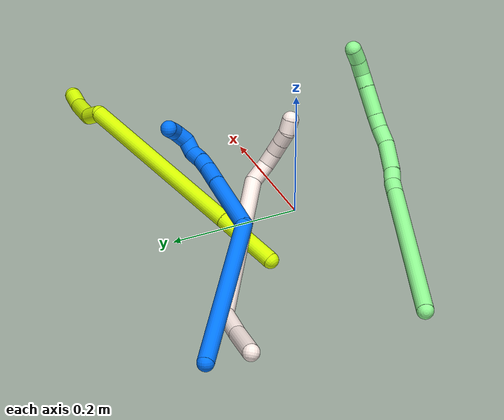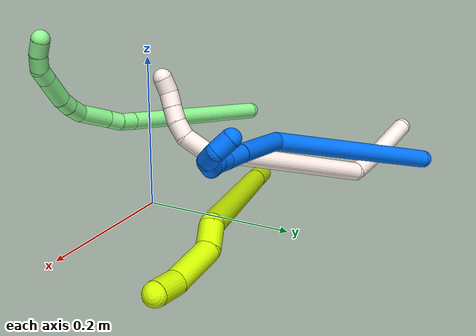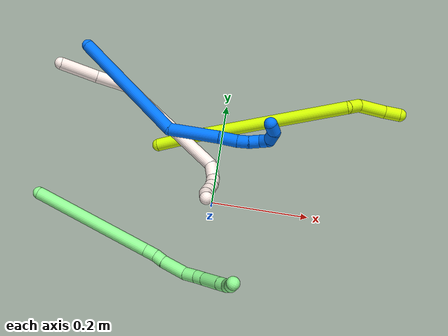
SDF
<sdf version="1.7">
 <world name="default">
  <model name="11">
   <static>0</static>
   <link name="11">
    <collision name="collision-cylinder-e_1_1_4">
     <pose>0.034737 0.008657 0.012418 -0.608771 1.15984 -0.405901</pose>
     <geometry><cylinder><radius>0.0125</radius><length>0.075785</length></cylinder></geometry>
     <surface>
      <friction><ode><mu>1.16</mu><mu2>1.16</mu2><slip1>0</slip1><slip2>0</slip2></ode></friction>
      <contact><ode><kp>1e+06</kp><kd>1</kd><max_vel>0</max_vel><min_depth>0.001</min_depth></ode></contact>
     </surface>
    </collision>
    <visual name="visual-cylinder-e_1_1_4">
     <pose>0.034737 0.008657 0.012418 -0.608771 1.15984 -0.405901</pose>
     <geometry><cylinder><radius>0.0125</radius><length>0.075785</length></cylinder></geometry>
     <material><ambient>1 0.933333 0.909804 1</ambient></material>
    </visual>
    <collision name="collision-cylinder-e_2_4_5">
     <pose>0.096171 0.026401 0.038602 -0.583536 1.01734 -0.331867</pose>
     <geometry><cylinder><radius>0.0125</radius><length>0.062763</length></cylinder></geometry>
     <surface>
      <friction><ode><mu>1.16</mu><mu2>1.16</mu2><slip1>0</slip1><slip2>0</slip2></ode></friction>
      <contact><ode><kp>1e+06</kp><kd>1</kd><max_vel>0</max_vel><min_depth>0.001</min_depth></ode></contact>
     </surface>
    </collision>
    <visual name="visual-cylinder-e_2_4_5">
     <pose>0.096171 0.026401 0.038602 -0.583536 1.01734 -0.331867</pose>
     <geometry><cylinder><radius>0.0125</radius><length>0.062763</length></cylinder></geometry>
     <material><ambient>1 0.933333 0.909804 1</ambient></material>
    </visual>
    <collision name="collision-cylinder-e_3_5_6">
     <pose>0.188826 0.027038 0.156612 0.080904 0.562655 0.023392</pose>
     <geometry><cylinder><radius>0.0125</radius><length>0.247297</length></cylinder></geometry>
     <surface>
      <friction><ode><mu>1.16</mu><mu2>1.16</mu2><slip1>0</slip1><slip2>0</slip2></ode></friction>
      <contact><ode><kp>1e+06</kp><kd>1</kd><max_vel>0</max_vel><min_depth>0.001</min_depth></ode></contact>
     </surface>
    </collision>
    <visual name="visual-cylinder-e_3_5_6">
     <pose>0.188826 0.027038 0.156612 0.080904 0.562655 0.023392</pose>
     <geometry><cylinder><radius>0.0125</radius><length>0.247297</length></cylinder></geometry>
     <material><ambient>1 0.933333 0.909804 1</ambient></material>
    </visual>
    <collision name="collision-cylinder-e_4_6_7">
     <pose>0.255263 0.010892 0.275001 0.498168 0.02973 0.007563</pose>
     <geometry><cylinder><radius>0.0125</radius><length>0.032218</length></cylinder></geometry>
     <surface>
      <friction><ode><mu>1.16</mu><mu2>1.16</mu2><slip1>0</slip1><slip2>0</slip2></ode></friction>
      <contact><ode><kp>1e+06</kp><kd>1</kd><max_vel>0</max_vel><min_depth>0.001</min_depth></ode></contact>
     </surface>
    </collision>
    <visual name="visual-cylinder-e_4_6_7">
     <pose>0.255263 0.010892 0.275001 0.498168 0.02973 0.007563</pose>
     <geometry><cylinder><radius>0.0125</radius><length>0.032218</length></cylinder></geometry>
     <material><ambient>1 0.933333 0.909804 1</ambient></material>
    </visual>
    <collision name="collision-cylinder-e_5_7_8">
     <pose>0.251388 -0.000866 0.298276 0.4188 -0.410847 -0.088503</pose>
     <geometry><cylinder><radius>0.0125</radius><length>0.021802</length></cylinder></geometry>
     <surface>
      <friction><ode><mu>1.16</mu><mu2>1.16</mu2><slip1>0</slip1><slip2>0</slip2></ode></friction>
      <contact><ode><kp>1e+06</kp><kd>1</kd><max_vel>0</max_vel><min_depth>0.001</min_depth></ode></contact>
     </surface>
    </collision>
    <visual name="visual-cylinder-e_5_7_8">
     <pose>0.251388 -0.000866 0.298276 0.4188 -0.410847 -0.088503</pose>
     <geometry><cylinder><radius>0.0125</radius><length>0.021802</length></cylinder></geometry>
     <material><ambient>1 0.933333 0.909804 1</ambient></material>
    </visual>
    <collision name="collision-cylinder-e_6_8_9">
     <pose>0.24102 -0.008078 0.31476 0.404399 -0.64466 -0.136718</pose>
     <geometry><cylinder><radius>0.0125</radius><length>0.020015</length></cylinder></geometry>
     <surface>
      <friction><ode><mu>1.16</mu><mu2>1.16</mu2><slip1>0</slip1><slip2>0</slip2></ode></friction>
      <contact><ode><kp>1e+06</kp><kd>1</kd><max_vel>0</max_vel><min_depth>0.001</min_depth></ode></contact>
     </surface>
    </collision>
    <visual name="visual-cylinder-e_6_8_9">
     <pose>0.24102 -0.008078 0.31476 0.404399 -0.64466 -0.136718</pose>
     <geometry><cylinder><radius>0.0125</radius><length>0.020015</length></cylinder></geometry>
     <material><ambient>1 0.933333 0.909804 1</ambient></material>
    </visual>
    <collision name="collision-cylinder-e_7_9_10">
     <pose>0.22857 -0.014186 0.329178 0.396909 -0.69884 -0.14629</pose>
     <geometry><cylinder><radius>0.0125</radius><length>0.020009</length></cylinder></geometry>
     <surface>
      <friction><ode><mu>1.16</mu><mu2>1.16</mu2><slip1>0</slip1><slip2>0</slip2></ode></friction>
      <contact><ode><kp>1e+06</kp><kd>1</kd><max_vel>0</max_vel><min_depth>0.001</min_depth></ode></contact>
     </surface>
    </collision>
    <visual name="visual-cylinder-e_7_9_10">
     <pose>0.22857 -0.014186 0.329178 0.396909 -0.69884 -0.14629</pose>
     <geometry><cylinder><radius>0.0125</radius><length>0.020009</length></cylinder></geometry>
     <material><ambient>1 0.933333 0.909804 1</ambient></material>
    </visual>
    <collision name="collision-cylinder-e_8_10_2">
     <pose>0.218033 -0.018128 0.345371 0.10706 -0.420077 -0.022844</pose>
     <geometry><cylinder><radius>0.0125</radius><length>0.020112</length></cylinder></geometry>
     <surface>
      <friction><ode><mu>1.16</mu><mu2>1.16</mu2><slip1>0</slip1><slip2>0</slip2></ode></friction>
      <contact><ode><kp>1e+06</kp><kd>1</kd><max_vel>0</max_vel><min_depth>0.001</min_depth></ode></contact>
     </surface>
    </collision>
    <visual name="visual-cylinder-e_8_10_2">
     <pose>0.218033 -0.018128 0.345371 0.10706 -0.420077 -0.022844</pose>
     <geometry><cylinder><radius>0.0125</radius><length>0.020112</length></cylinder></geometry>
     <material><ambient>1 0.933333 0.909804 1</ambient></material>
    </visual>
    <collision name="collision-sphere-2">
     <pose>0.213932 -0.019109 0.3545 0 -0 0</pose>
     <geometry><sphere><radius>0.0125</radius></sphere></geometry>
     <surface>
      <friction><ode><mu>1.16</mu><mu2>1.16</mu2><slip1>0</slip1><slip2>0</slip2></ode></friction>
      <contact><ode><kp>1e+06</kp><kd>1</kd><max_vel>0</max_vel><min_depth>0.001</min_depth></ode></contact>
     </surface>
    </collision>
    <visual name="visual-sphere-2">
     <pose>0.213932 -0.019109 0.3545 0 -0 0</pose>
     <geometry><sphere><radius>0.0125</radius></sphere></geometry>
     <material><ambient>1 0.933333 0.909804 1</ambient></material>
    </visual>
    <collision name="collision-sphere-10">
     <pose>0.222134 -0.017147 0.336242 0 -0 0</pose>
     <geometry><sphere><radius>0.0125</radius></sphere></geometry>
     <surface>
      <friction><ode><mu>1.16</mu><mu2>1.16</mu2><slip1>0</slip1><slip2>0</slip2></ode></friction>
      <contact><ode><kp>1e+06</kp><kd>1</kd><max_vel>0</max_vel><min_depth>0.001</min_depth></ode></contact>
     </surface>
    </collision>
    <visual name="visual-sphere-10">
     <pose>0.222134 -0.017147 0.336242 0 -0 0</pose>
     <geometry><sphere><radius>0.0125</radius></sphere></geometry>
     <material><ambient>1 0.933333 0.909804 1</ambient></material>
    </visual>
    <collision name="collision-sphere-9">
     <pose>0.235006 -0.011225 0.322114 0 -0 0</pose>
     <geometry><sphere><radius>0.0125</radius></sphere></geometry>
     <surface>
      <friction><ode><mu>1.16</mu><mu2>1.16</mu2><slip1>0</slip1><slip2>0</slip2></ode></friction>
      <contact><ode><kp>1e+06</kp><kd>1</kd><max_vel>0</max_vel><min_depth>0.001</min_depth></ode></contact>
     </surface>
    </collision>
    <visual name="visual-sphere-9">
     <pose>0.235006 -0.011225 0.322114 0 -0 0</pose>
     <geometry><sphere><radius>0.0125</radius></sphere></geometry>
     <material><ambient>1 0.933333 0.909804 1</ambient></material>
    </visual>
    <collision name="collision-sphere-4">
     <pose>0.069475 0.017313 0.024836 0 -0 0</pose>
     <geometry><sphere><radius>0.0125</radius></sphere></geometry>
     <surface>
      <friction><ode><mu>1.16</mu><mu2>1.16</mu2><slip1>0</slip1><slip2>0</slip2></ode></friction>
      <contact><ode><kp>1e+06</kp><kd>1</kd><max_vel>0</max_vel><min_depth>0.001</min_depth></ode></contact>
     </surface>
    </collision>
    <visual name="visual-sphere-4">
     <pose>0.069475 0.017313 0.024836 0 -0 0</pose>
     <geometry><sphere><radius>0.0125</radius></sphere></geometry>
     <material><ambient>1 0.933333 0.909804 1</ambient></material>
    </visual>
    <collision name="collision-sphere-1">
     <geometry><sphere><radius>0.0125</radius></sphere></geometry>
     <surface>
      <friction><ode><mu>1.16</mu><mu2>1.16</mu2><slip1>0</slip1><slip2>0</slip2></ode></friction>
      <contact><ode><kp>1e+06</kp><kd>1</kd><max_vel>0</max_vel><min_depth>0.001</min_depth></ode></contact>
     </surface>
    </collision>
    <visual name="visual-sphere-1">
     <geometry><sphere><radius>0.0125</radius></sphere></geometry>
     <material><ambient>1 0.933333 0.909804 1</ambient></material>
    </visual>
    <collision name="collision-sphere-8">
     <pose>0.247034 -0.00493 0.307406 0 -0 0</pose>
     <geometry><sphere><radius>0.0125</radius></sphere></geometry>
     <surface>
      <friction><ode><mu>1.16</mu><mu2>1.16</mu2><slip1>0</slip1><slip2>0</slip2></ode></friction>
      <contact><ode><kp>1e+06</kp><kd>1</kd><max_vel>0</max_vel><min_depth>0.001</min_depth></ode></contact>
     </surface>
    </collision>
    <visual name="visual-sphere-8">
     <pose>0.247034 -0.00493 0.307406 0 -0 0</pose>
     <geometry><sphere><radius>0.0125</radius></sphere></geometry>
     <material><ambient>1 0.933333 0.909804 1</ambient></material>
    </visual>
    <collision name="collision-sphere-5">
     <pose>0.122868 0.03549 0.052367 0 -0 0</pose>
     <geometry><sphere><radius>0.0125</radius></sphere></geometry>
     <surface>
      <friction><ode><mu>1.16</mu><mu2>1.16</mu2><slip1>0</slip1><slip2>0</slip2></ode></friction>
      <contact><ode><kp>1e+06</kp><kd>1</kd><max_vel>0</max_vel><min_depth>0.001</min_depth></ode></contact>
     </surface>
    </collision>
    <visual name="visual-sphere-5">
     <pose>0.122868 0.03549 0.052367 0 -0 0</pose>
     <geometry><sphere><radius>0.0125</radius></sphere></geometry>
     <material><ambient>1 0.933333 0.909804 1</ambient></material>
    </visual>
    <collision name="collision-sphere-6">
     <pose>0.254784 0.018585 0.260857 0 -0 0</pose>
     <geometry><sphere><radius>0.0125</radius></sphere></geometry>
     <surface>
      <friction><ode><mu>1.16</mu><mu2>1.16</mu2><slip1>0</slip1><slip2>0</slip2></ode></friction>
      <contact><ode><kp>1e+06</kp><kd>1</kd><max_vel>0</max_vel><min_depth>0.001</min_depth></ode></contact>
     </surface>
    </collision>
    <visual name="visual-sphere-6">
     <pose>0.254784 0.018585 0.260857 0 -0 0</pose>
     <geometry><sphere><radius>0.0125</radius></sphere></geometry>
     <material><ambient>1 0.933333 0.909804 1</ambient></material>
    </visual>
    <collision name="collision-sphere-7">
     <pose>0.255742 0.003198 0.289146 0 -0 0</pose>
     <geometry><sphere><radius>0.0125</radius></sphere></geometry>
     <surface>
      <friction><ode><mu>1.16</mu><mu2>1.16</mu2><slip1>0</slip1><slip2>0</slip2></ode></friction>
      <contact><ode><kp>1e+06</kp><kd>1</kd><max_vel>0</max_vel><min_depth>0.001</min_depth></ode></contact>
     </surface>
    </collision>
    <visual name="visual-sphere-7">
     <pose>0.255742 0.003198 0.289146 0 -0 0</pose>
     <geometry><sphere><radius>0.0125</radius></sphere></geometry>
     <material><ambient>1 0.933333 0.909804 1</ambient></material>
    </visual>
    <inertial>
     <pose>0.165704 0.017042 0.154578 0 -0 0</pose>
     <mass>0.5</mass>
     <inertia>
      <ixx>0.00114</ixx>
      <ixy>0</ixy>
      <ixz>0</ixz>
      <iyy>0.001349</iyy>
      <iyz>0</iyz>
      <izz>-0.000628</izz>
     </inertia>
    </inertial>
   </link>
   <pose>-0.341829 0.231252 0.046803 0.222388 0.696112 -0.332527</pose>
  </model>
  <model name="13">
   <static>0</static>
   <link name="13">
    <collision name="collision-cylinder-e_1_1_4">
     <pose>-0.022667 -0.05959 0.105034 0.516058 -0.185545 -0.049099</pose>
     <geometry><cylinder><radius>0.0125</radius><length>0.24574</length></cylinder></geometry>
     <surface>
      <friction><ode><mu>1.16</mu><mu2>1.16</mu2><slip1>0</slip1><slip2>0</slip2></ode></friction>
      <contact><ode><kp>1e+06</kp><kd>1</kd><max_vel>0</max_vel><min_depth>0.001</min_depth></ode></contact>
     </surface>
    </collision>
    <visual name="visual-cylinder-e_1_1_4">
     <pose>-0.022667 -0.05959 0.105034 0.516058 -0.185545 -0.049099</pose>
     <geometry><cylinder><radius>0.0125</radius><length>0.24574</length></cylinder></geometry>
     <material><ambient>0.564706 0.984314 0.572549 1</ambient></material>
    </visual>
    <collision name="collision-cylinder-e_2_4_5">
     <pose>-0.047634 -0.125161 0.22001 0.541581 -0.195686 -0.054485</pose>
     <geometry><cylinder><radius>0.0125</radius><length>0.023654</length></cylinder></geometry>
     <surface>
      <friction><ode><mu>1.16</mu><mu2>1.16</mu2><slip1>0</slip1><slip2>0</slip2></ode></friction>
      <contact><ode><kp>1e+06</kp><kd>1</kd><max_vel>0</max_vel><min_depth>0.001</min_depth></ode></contact>
     </surface>
    </collision>
    <visual name="visual-cylinder-e_2_4_5">
     <pose>-0.047634 -0.125161 0.22001 0.541581 -0.195686 -0.054485</pose>
     <geometry><cylinder><radius>0.0125</radius><length>0.023654</length></cylinder></geometry>
     <material><ambient>0.564706 0.984314 0.572549 1</ambient></material>
    </visual>
    <collision name="collision-cylinder-e_3_5_6">
     <pose>-0.051217 -0.138684 0.237348 0.795163 -0.12085 -0.050802</pose>
     <geometry><cylinder><radius>0.0125</radius><length>0.021286</length></cylinder></geometry>
     <surface>
      <friction><ode><mu>1.16</mu><mu2>1.16</mu2><slip1>0</slip1><slip2>0</slip2></ode></friction>
      <contact><ode><kp>1e+06</kp><kd>1</kd><max_vel>0</max_vel><min_depth>0.001</min_depth></ode></contact>
     </surface>
    </collision>
    <visual name="visual-cylinder-e_3_5_6">
     <pose>-0.051217 -0.138684 0.237348 0.795163 -0.12085 -0.050802</pose>
     <geometry><cylinder><radius>0.0125</radius><length>0.021286</length></cylinder></geometry>
     <material><ambient>0.564706 0.984314 0.572549 1</ambient></material>
    </visual>
    <collision name="collision-cylinder-e_4_6_7">
     <pose>-0.059136 -0.162925 0.262667 0.750068 -0.264579 -0.104672</pose>
     <geometry><cylinder><radius>0.0125</radius><length>0.050754</length></cylinder></geometry>
     <surface>
      <friction><ode><mu>1.16</mu><mu2>1.16</mu2><slip1>0</slip1><slip2>0</slip2></ode></friction>
      <contact><ode><kp>1e+06</kp><kd>1</kd><max_vel>0</max_vel><min_depth>0.001</min_depth></ode></contact>
     </surface>
    </collision>
    <visual name="visual-cylinder-e_4_6_7">
     <pose>-0.059136 -0.162925 0.262667 0.750068 -0.264579 -0.104672</pose>
     <geometry><cylinder><radius>0.0125</radius><length>0.050754</length></cylinder></geometry>
     <material><ambient>0.564706 0.984314 0.572549 1</ambient></material>
    </visual>
    <collision name="collision-cylinder-e_5_7_8">
     <pose>-0.072725 -0.189284 0.287226 0.968765 -0.53532 -0.286629</pose>
     <geometry><cylinder><radius>0.0125</radius><length>0.027259</length></cylinder></geometry>
     <surface>
      <friction><ode><mu>1.16</mu><mu2>1.16</mu2><slip1>0</slip1><slip2>0</slip2></ode></friction>
      <contact><ode><kp>1e+06</kp><kd>1</kd><max_vel>0</max_vel><min_depth>0.001</min_depth></ode></contact>
     </surface>
    </collision>
    <visual name="visual-cylinder-e_5_7_8">
     <pose>-0.072725 -0.189284 0.287226 0.968765 -0.53532 -0.286629</pose>
     <geometry><cylinder><radius>0.0125</radius><length>0.027259</length></cylinder></geometry>
     <material><ambient>0.564706 0.984314 0.572549 1</ambient></material>
    </visual>
    <collision name="collision-cylinder-e_6_8_9">
     <pose>-0.084948 -0.207321 0.297739 1.13753 -0.518908 -0.336149</pose>
     <geometry><cylinder><radius>0.0125</radius><length>0.021254</length></cylinder></geometry>
     <surface>
      <friction><ode><mu>1.16</mu><mu2>1.16</mu2><slip1>0</slip1><slip2>0</slip2></ode></friction>
      <contact><ode><kp>1e+06</kp><kd>1</kd><max_vel>0</max_vel><min_depth>0.001</min_depth></ode></contact>
     </surface>
    </collision>
    <visual name="visual-cylinder-e_6_8_9">
     <pose>-0.084948 -0.207321 0.297739 1.13753 -0.518908 -0.336149</pose>
     <geometry><cylinder><radius>0.0125</radius><length>0.021254</length></cylinder></geometry>
     <material><ambient>0.564706 0.984314 0.572549 1</ambient></material>
    </visual>
    <collision name="collision-cylinder-e_7_9_10">
     <pose>-0.101557 -0.234311 0.306673 1.30542 -0.531403 -0.410239</pose>
     <geometry><cylinder><radius>0.0125</radius><length>0.044752</length></cylinder></geometry>
     <surface>
      <friction><ode><mu>1.16</mu><mu2>1.16</mu2><slip1>0</slip1><slip2>0</slip2></ode></friction>
      <contact><ode><kp>1e+06</kp><kd>1</kd><max_vel>0</max_vel><min_depth>0.001</min_depth></ode></contact>
     </surface>
    </collision>
    <visual name="visual-cylinder-e_7_9_10">
     <pose>-0.101557 -0.234311 0.306673 1.30542 -0.531403 -0.410239</pose>
     <geometry><cylinder><radius>0.0125</radius><length>0.044752</length></cylinder></geometry>
     <material><ambient>0.564706 0.984314 0.572549 1</ambient></material>
    </visual>
    <collision name="collision-cylinder-e_8_10_11">
     <pose>-0.118231 -0.261477 0.313971 1.31474 -0.543055 -0.42336</pose>
     <geometry><cylinder><radius>0.0125</radius><length>0.020649</length></cylinder></geometry>
     <surface>
      <friction><ode><mu>1.16</mu><mu2>1.16</mu2><slip1>0</slip1><slip2>0</slip2></ode></friction>
      <contact><ode><kp>1e+06</kp><kd>1</kd><max_vel>0</max_vel><min_depth>0.001</min_depth></ode></contact>
     </surface>
    </collision>
    <visual name="visual-cylinder-e_8_10_11">
     <pose>-0.118231 -0.261477 0.313971 1.31474 -0.543055 -0.42336</pose>
     <geometry><cylinder><radius>0.0125</radius><length>0.020649</length></cylinder></geometry>
     <material><ambient>0.564706 0.984314 0.572549 1</ambient></material>
    </visual>
    <collision name="collision-cylinder-e_9_11_12">
     <pose>-0.129586 -0.279198 0.313588 1.8492 -0.563045 -0.732315</pose>
     <geometry><cylinder><radius>0.0125</radius><length>0.022555</length></cylinder></geometry>
     <surface>
      <friction><ode><mu>1.16</mu><mu2>1.16</mu2><slip1>0</slip1><slip2>0</slip2></ode></friction>
      <contact><ode><kp>1e+06</kp><kd>1</kd><max_vel>0</max_vel><min_depth>0.001</min_depth></ode></contact>
     </surface>
    </collision>
    <visual name="visual-cylinder-e_9_11_12">
     <pose>-0.129586 -0.279198 0.313588 1.8492 -0.563045 -0.732315</pose>
     <geometry><cylinder><radius>0.0125</radius><length>0.022555</length></cylinder></geometry>
     <material><ambient>0.564706 0.984314 0.572549 1</ambient></material>
    </visual>
    <collision name="collision-cylinder-e_10_12_2">
     <pose>-0.142044 -0.296239 0.306649 2.07264 -0.622149 -0.995125</pose>
     <geometry><cylinder><radius>0.0125</radius><length>0.022098</length></cylinder></geometry>
     <surface>
      <friction><ode><mu>1.16</mu><mu2>1.16</mu2><slip1>0</slip1><slip2>0</slip2></ode></friction>
      <contact><ode><kp>1e+06</kp><kd>1</kd><max_vel>0</max_vel><min_depth>0.001</min_depth></ode></contact>
     </surface>
    </collision>
    <visual name="visual-cylinder-e_10_12_2">
     <pose>-0.142044 -0.296239 0.306649 2.07264 -0.622149 -0.995125</pose>
     <geometry><cylinder><radius>0.0125</radius><length>0.022098</length></cylinder></geometry>
     <material><ambient>0.564706 0.984314 0.572549 1</ambient></material>
    </visual>
    <collision name="collision-sphere-2">
     <pose>-0.148483 -0.30411 0.302329 0 -0 0</pose>
     <geometry><sphere><radius>0.0125</radius></sphere></geometry>
     <surface>
      <friction><ode><mu>1.16</mu><mu2>1.16</mu2><slip1>0</slip1><slip2>0</slip2></ode></friction>
      <contact><ode><kp>1e+06</kp><kd>1</kd><max_vel>0</max_vel><min_depth>0.001</min_depth></ode></contact>
     </surface>
    </collision>
    <visual name="visual-sphere-2">
     <pose>-0.148483 -0.30411 0.302329 0 -0 0</pose>
     <geometry><sphere><radius>0.0125</radius></sphere></geometry>
     <material><ambient>0.564706 0.984314 0.572549 1</ambient></material>
    </visual>
    <collision name="collision-sphere-12">
     <pose>-0.135605 -0.288367 0.310968 0 -0 0</pose>
     <geometry><sphere><radius>0.0125</radius></sphere></geometry>
     <surface>
      <friction><ode><mu>1.16</mu><mu2>1.16</mu2><slip1>0</slip1><slip2>0</slip2></ode></friction>
      <contact><ode><kp>1e+06</kp><kd>1</kd><max_vel>0</max_vel><min_depth>0.001</min_depth></ode></contact>
     </surface>
    </collision>
    <visual name="visual-sphere-12">
     <pose>-0.135605 -0.288367 0.310968 0 -0 0</pose>
     <geometry><sphere><radius>0.0125</radius></sphere></geometry>
     <material><ambient>0.564706 0.984314 0.572549 1</ambient></material>
    </visual>
    <collision name="collision-sphere-11">
     <pose>-0.123566 -0.270029 0.316209 0 -0 0</pose>
     <geometry><sphere><radius>0.0125</radius></sphere></geometry>
     <surface>
      <friction><ode><mu>1.16</mu><mu2>1.16</mu2><slip1>0</slip1><slip2>0</slip2></ode></friction>
      <contact><ode><kp>1e+06</kp><kd>1</kd><max_vel>0</max_vel><min_depth>0.001</min_depth></ode></contact>
     </surface>
    </collision>
    <visual name="visual-sphere-11">
     <pose>-0.123566 -0.270029 0.316209 0 -0 0</pose>
     <geometry><sphere><radius>0.0125</radius></sphere></geometry>
     <material><ambient>0.564706 0.984314 0.572549 1</ambient></material>
    </visual>
    <collision name="collision-sphere-10">
     <pose>-0.112896 -0.252926 0.311732 0 -0 0</pose>
     <geometry><sphere><radius>0.0125</radius></sphere></geometry>
     <surface>
      <friction><ode><mu>1.16</mu><mu2>1.16</mu2><slip1>0</slip1><slip2>0</slip2></ode></friction>
      <contact><ode><kp>1e+06</kp><kd>1</kd><max_vel>0</max_vel><min_depth>0.001</min_depth></ode></contact>
     </surface>
    </collision>
    <visual name="visual-sphere-10">
     <pose>-0.112896 -0.252926 0.311732 0 -0 0</pose>
     <geometry><sphere><radius>0.0125</radius></sphere></geometry>
     <material><ambient>0.564706 0.984314 0.572549 1</ambient></material>
    </visual>
    <collision name="collision-sphere-9">
     <pose>-0.090218 -0.215696 0.301613 0 -0 0</pose>
     <geometry><sphere><radius>0.0125</radius></sphere></geometry>
     <surface>
      <friction><ode><mu>1.16</mu><mu2>1.16</mu2><slip1>0</slip1><slip2>0</slip2></ode></friction>
      <contact><ode><kp>1e+06</kp><kd>1</kd><max_vel>0</max_vel><min_depth>0.001</min_depth></ode></contact>
     </surface>
    </collision>
    <visual name="visual-sphere-9">
     <pose>-0.090218 -0.215696 0.301613 0 -0 0</pose>
     <geometry><sphere><radius>0.0125</radius></sphere></geometry>
     <material><ambient>0.564706 0.984314 0.572549 1</ambient></material>
    </visual>
    <collision name="collision-sphere-4">
     <pose>-0.045335 -0.11918 0.210069 0 -0 0</pose>
     <geometry><sphere><radius>0.0125</radius></sphere></geometry>
     <surface>
      <friction><ode><mu>1.16</mu><mu2>1.16</mu2><slip1>0</slip1><slip2>0</slip2></ode></friction>
      <contact><ode><kp>1e+06</kp><kd>1</kd><max_vel>0</max_vel><min_depth>0.001</min_depth></ode></contact>
     </surface>
    </collision>
    <visual name="visual-sphere-4">
     <pose>-0.045335 -0.11918 0.210069 0 -0 0</pose>
     <geometry><sphere><radius>0.0125</radius></sphere></geometry>
     <material><ambient>0.564706 0.984314 0.572549 1</ambient></material>
    </visual>
    <collision name="collision-sphere-1">
     <geometry><sphere><radius>0.0125</radius></sphere></geometry>
     <surface>
      <friction><ode><mu>1.16</mu><mu2>1.16</mu2><slip1>0</slip1><slip2>0</slip2></ode></friction>
      <contact><ode><kp>1e+06</kp><kd>1</kd><max_vel>0</max_vel><min_depth>0.001</min_depth></ode></contact>
     </surface>
    </collision>
    <visual name="visual-sphere-1">
     <geometry><sphere><radius>0.0125</radius></sphere></geometry>
     <material><ambient>0.564706 0.984314 0.572549 1</ambient></material>
    </visual>
    <collision name="collision-sphere-8">
     <pose>-0.079677 -0.198945 0.293865 0 -0 0</pose>
     <geometry><sphere><radius>0.0125</radius></sphere></geometry>
     <surface>
      <friction><ode><mu>1.16</mu><mu2>1.16</mu2><slip1>0</slip1><slip2>0</slip2></ode></friction>
      <contact><ode><kp>1e+06</kp><kd>1</kd><max_vel>0</max_vel><min_depth>0.001</min_depth></ode></contact>
     </surface>
    </collision>
    <visual name="visual-sphere-8">
     <pose>-0.079677 -0.198945 0.293865 0 -0 0</pose>
     <geometry><sphere><radius>0.0125</radius></sphere></geometry>
     <material><ambient>0.564706 0.984314 0.572549 1</ambient></material>
    </visual>
    <collision name="collision-sphere-5">
     <pose>-0.049934 -0.131141 0.229951 0 -0 0</pose>
     <geometry><sphere><radius>0.0125</radius></sphere></geometry>
     <surface>
      <friction><ode><mu>1.16</mu><mu2>1.16</mu2><slip1>0</slip1><slip2>0</slip2></ode></friction>
      <contact><ode><kp>1e+06</kp><kd>1</kd><max_vel>0</max_vel><min_depth>0.001</min_depth></ode></contact>
     </surface>
    </collision>
    <visual name="visual-sphere-5">
     <pose>-0.049934 -0.131141 0.229951 0 -0 0</pose>
     <geometry><sphere><radius>0.0125</radius></sphere></geometry>
     <material><ambient>0.564706 0.984314 0.572549 1</ambient></material>
    </visual>
    <collision name="collision-sphere-6">
     <pose>-0.0525 -0.146228 0.244746 0 -0 0</pose>
     <geometry><sphere><radius>0.0125</radius></sphere></geometry>
     <surface>
      <friction><ode><mu>1.16</mu><mu2>1.16</mu2><slip1>0</slip1><slip2>0</slip2></ode></friction>
      <contact><ode><kp>1e+06</kp><kd>1</kd><max_vel>0</max_vel><min_depth>0.001</min_depth></ode></contact>
     </surface>
    </collision>
    <visual name="visual-sphere-6">
     <pose>-0.0525 -0.146228 0.244746 0 -0 0</pose>
     <geometry><sphere><radius>0.0125</radius></sphere></geometry>
     <material><ambient>0.564706 0.984314 0.572549 1</ambient></material>
    </visual>
    <collision name="collision-sphere-7">
     <pose>-0.065772 -0.179622 0.280587 0 -0 0</pose>
     <geometry><sphere><radius>0.0125</radius></sphere></geometry>
     <surface>
      <friction><ode><mu>1.16</mu><mu2>1.16</mu2><slip1>0</slip1><slip2>0</slip2></ode></friction>
      <contact><ode><kp>1e+06</kp><kd>1</kd><max_vel>0</max_vel><min_depth>0.001</min_depth></ode></contact>
     </surface>
    </collision>
    <visual name="visual-sphere-7">
     <pose>-0.065772 -0.179622 0.280587 0 -0 0</pose>
     <geometry><sphere><radius>0.0125</radius></sphere></geometry>
     <material><ambient>0.564706 0.984314 0.572549 1</ambient></material>
    </visual>
    <inertial>
     <pose>-0.055249 -0.13424 0.195226 0 -0 0</pose>
     <mass>0.5</mass>
     <inertia>
      <ixx>0.001173</ixx>
      <ixy>0</ixy>
      <ixz>0</ixz>
      <iyy>0.001016</iyy>
      <iyz>0</iyz>
      <izz>0.000897</izz>
     </inertia>
    </inertial>
   </link>
   <pose>-0.345846 -0.032428 0.035593 -1.99576 0.263981 -2.04427</pose>
  </model>
  <model name="14">
   <static>0</static>
   <link name="14">
    <collision name="collision-cylinder-e_1_1_4">
     <pose>0.075105 -0.080524 0.062489 0.910839 0.635039 0.319169</pose>
     <geometry><cylinder><radius>0.0125</radius><length>0.253218</length></cylinder></geometry>
     <surface>
      <friction><ode><mu>1.16</mu><mu2>1.16</mu2><slip1>0</slip1><slip2>0</slip2></ode></friction>
      <contact><ode><kp>1e+06</kp><kd>1</kd><max_vel>0</max_vel><min_depth>0.001</min_depth></ode></contact>
     </surface>
    </collision>
    <visual name="visual-cylinder-e_1_1_4">
     <pose>0.075105 -0.080524 0.062489 0.910839 0.635039 0.319169</pose>
     <geometry><cylinder><radius>0.0125</radius><length>0.253218</length></cylinder></geometry>
     <material><ambient>0 0.462745 1 1</ambient></material>
    </visual>
    <collision name="collision-cylinder-e_2_4_5">
     <pose>0.195534 -0.166867 0.143661 0.302006 1.16323 0.199422</pose>
     <geometry><cylinder><radius>0.0125</radius><length>0.098733</length></cylinder></geometry>
     <surface>
      <friction><ode><mu>1.16</mu><mu2>1.16</mu2><slip1>0</slip1><slip2>0</slip2></ode></friction>
      <contact><ode><kp>1e+06</kp><kd>1</kd><max_vel>0</max_vel><min_depth>0.001</min_depth></ode></contact>
     </surface>
    </collision>
    <visual name="visual-cylinder-e_2_4_5">
     <pose>0.195534 -0.166867 0.143661 0.302006 1.16323 0.199422</pose>
     <geometry><cylinder><radius>0.0125</radius><length>0.098733</length></cylinder></geometry>
     <material><ambient>0 0.462745 1 1</ambient></material>
    </visual>
    <collision name="collision-cylinder-e_3_5_6">
     <pose>0.257881 -0.175857 0.168154 0.499287 1.19999 0.345381</pose>
     <geometry><cylinder><radius>0.0125</radius><length>0.036532</length></cylinder></geometry>
     <surface>
      <friction><ode><mu>1.16</mu><mu2>1.16</mu2><slip1>0</slip1><slip2>0</slip2></ode></friction>
      <contact><ode><kp>1e+06</kp><kd>1</kd><max_vel>0</max_vel><min_depth>0.001</min_depth></ode></contact>
     </surface>
    </collision>
    <visual name="visual-cylinder-e_3_5_6">
     <pose>0.257881 -0.175857 0.168154 0.499287 1.19999 0.345381</pose>
     <geometry><cylinder><radius>0.0125</radius><length>0.036532</length></cylinder></geometry>
     <material><ambient>0 0.462745 1 1</ambient></material>
    </visual>
    <collision name="collision-cylinder-e_4_6_7">
     <pose>0.285218 -0.179503 0.178553 0.10359 1.15017 0.067178</pose>
     <geometry><cylinder><radius>0.0125</radius><length>0.022594</length></cylinder></geometry>
     <surface>
      <friction><ode><mu>1.16</mu><mu2>1.16</mu2><slip1>0</slip1><slip2>0</slip2></ode></friction>
      <contact><ode><kp>1e+06</kp><kd>1</kd><max_vel>0</max_vel><min_depth>0.001</min_depth></ode></contact>
     </surface>
    </collision>
    <visual name="visual-cylinder-e_4_6_7">
     <pose>0.285218 -0.179503 0.178553 0.10359 1.15017 0.067178</pose>
     <geometry><cylinder><radius>0.0125</radius><length>0.022594</length></cylinder></geometry>
     <material><ambient>0 0.462745 1 1</ambient></material>
    </visual>
    <collision name="collision-cylinder-e_5_7_8">
     <pose>0.306273 -0.178711 0.186822 -0.332001 1.22312 -0.233903</pose>
     <geometry><cylinder><radius>0.0125</radius><length>0.022855</length></cylinder></geometry>
     <surface>
      <friction><ode><mu>1.16</mu><mu2>1.16</mu2><slip1>0</slip1><slip2>0</slip2></ode></friction>
      <contact><ode><kp>1e+06</kp><kd>1</kd><max_vel>0</max_vel><min_depth>0.001</min_depth></ode></contact>
     </surface>
    </collision>
    <visual name="visual-cylinder-e_5_7_8">
     <pose>0.306273 -0.178711 0.186822 -0.332001 1.22312 -0.233903</pose>
     <geometry><cylinder><radius>0.0125</radius><length>0.022855</length></cylinder></geometry>
     <material><ambient>0 0.462745 1 1</ambient></material>
    </visual>
    <collision name="collision-cylinder-e_6_8_9">
     <pose>0.322766 -0.176035 0.198665 -0.170631 0.60676 -0.053532</pose>
     <geometry><cylinder><radius>0.0125</radius><length>0.020166</length></cylinder></geometry>
     <surface>
      <friction><ode><mu>1.16</mu><mu2>1.16</mu2><slip1>0</slip1><slip2>0</slip2></ode></friction>
      <contact><ode><kp>1e+06</kp><kd>1</kd><max_vel>0</max_vel><min_depth>0.001</min_depth></ode></contact>
     </surface>
    </collision>
    <visual name="visual-cylinder-e_6_8_9">
     <pose>0.322766 -0.176035 0.198665 -0.170631 0.60676 -0.053532</pose>
     <geometry><cylinder><radius>0.0125</radius><length>0.020166</length></cylinder></geometry>
     <material><ambient>0 0.462745 1 1</ambient></material>
    </visual>
    <collision name="collision-cylinder-e_7_9_10">
     <pose>0.330759 -0.166425 0.214427 -0.823632 0.197971 -0.086701</pose>
     <geometry><cylinder><radius>0.0125</radius><length>0.02281</length></cylinder></geometry>
     <surface>
      <friction><ode><mu>1.16</mu><mu2>1.16</mu2><slip1>0</slip1><slip2>0</slip2></ode></friction>
      <contact><ode><kp>1e+06</kp><kd>1</kd><max_vel>0</max_vel><min_depth>0.001</min_depth></ode></contact>
     </surface>
    </collision>
    <visual name="visual-cylinder-e_7_9_10">
     <pose>0.330759 -0.166425 0.214427 -0.823632 0.197971 -0.086701</pose>
     <geometry><cylinder><radius>0.0125</radius><length>0.02281</length></cylinder></geometry>
     <material><ambient>0 0.462745 1 1</ambient></material>
    </visual>
    <collision name="collision-cylinder-e_8_10_2">
     <pose>0.327313 -0.149662 0.227288 -1.01962 -0.51524 0.292517</pose>
     <geometry><cylinder><radius>0.0125</radius><length>0.023093</length></cylinder></geometry>
     <surface>
      <friction><ode><mu>1.16</mu><mu2>1.16</mu2><slip1>0</slip1><slip2>0</slip2></ode></friction>
      <contact><ode><kp>1e+06</kp><kd>1</kd><max_vel>0</max_vel><min_depth>0.001</min_depth></ode></contact>
     </surface>
    </collision>
    <visual name="visual-cylinder-e_8_10_2">
     <pose>0.327313 -0.149662 0.227288 -1.01962 -0.51524 0.292517</pose>
     <geometry><cylinder><radius>0.0125</radius><length>0.023093</length></cylinder></geometry>
     <material><ambient>0 0.462745 1 1</ambient></material>
    </visual>
    <collision name="collision-sphere-2">
     <pose>0.321623 -0.141102 0.23255 0 -0 0</pose>
     <geometry><sphere><radius>0.0125</radius></sphere></geometry>
     <surface>
      <friction><ode><mu>1.16</mu><mu2>1.16</mu2><slip1>0</slip1><slip2>0</slip2></ode></friction>
      <contact><ode><kp>1e+06</kp><kd>1</kd><max_vel>0</max_vel><min_depth>0.001</min_depth></ode></contact>
     </surface>
    </collision>
    <visual name="visual-sphere-2">
     <pose>0.321623 -0.141102 0.23255 0 -0 0</pose>
     <geometry><sphere><radius>0.0125</radius></sphere></geometry>
     <material><ambient>0 0.462745 1 1</ambient></material>
    </visual>
    <collision name="collision-sphere-10">
     <pose>0.333002 -0.158221 0.222026 0 -0 0</pose>
     <geometry><sphere><radius>0.0125</radius></sphere></geometry>
     <surface>
      <friction><ode><mu>1.16</mu><mu2>1.16</mu2><slip1>0</slip1><slip2>0</slip2></ode></friction>
      <contact><ode><kp>1e+06</kp><kd>1</kd><max_vel>0</max_vel><min_depth>0.001</min_depth></ode></contact>
     </surface>
    </collision>
    <visual name="visual-sphere-10">
     <pose>0.333002 -0.158221 0.222026 0 -0 0</pose>
     <geometry><sphere><radius>0.0125</radius></sphere></geometry>
     <material><ambient>0 0.462745 1 1</ambient></material>
    </visual>
    <collision name="collision-sphere-9">
     <pose>0.328516 -0.174629 0.206828 0 -0 0</pose>
     <geometry><sphere><radius>0.0125</radius></sphere></geometry>
     <surface>
      <friction><ode><mu>1.16</mu><mu2>1.16</mu2><slip1>0</slip1><slip2>0</slip2></ode></friction>
      <contact><ode><kp>1e+06</kp><kd>1</kd><max_vel>0</max_vel><min_depth>0.001</min_depth></ode></contact>
     </surface>
    </collision>
    <visual name="visual-sphere-9">
     <pose>0.328516 -0.174629 0.206828 0 -0 0</pose>
     <geometry><sphere><radius>0.0125</radius></sphere></geometry>
     <material><ambient>0 0.462745 1 1</ambient></material>
    </visual>
    <collision name="collision-sphere-4">
     <pose>0.150211 -0.161047 0.124979 0 -0 0</pose>
     <geometry><sphere><radius>0.0125</radius></sphere></geometry>
     <surface>
      <friction><ode><mu>1.16</mu><mu2>1.16</mu2><slip1>0</slip1><slip2>0</slip2></ode></friction>
      <contact><ode><kp>1e+06</kp><kd>1</kd><max_vel>0</max_vel><min_depth>0.001</min_depth></ode></contact>
     </surface>
    </collision>
    <visual name="visual-sphere-4">
     <pose>0.150211 -0.161047 0.124979 0 -0 0</pose>
     <geometry><sphere><radius>0.0125</radius></sphere></geometry>
     <material><ambient>0 0.462745 1 1</ambient></material>
    </visual>
    <collision name="collision-sphere-1">
     <geometry><sphere><radius>0.0125</radius></sphere></geometry>
     <surface>
      <friction><ode><mu>1.16</mu><mu2>1.16</mu2><slip1>0</slip1><slip2>0</slip2></ode></friction>
      <contact><ode><kp>1e+06</kp><kd>1</kd><max_vel>0</max_vel><min_depth>0.001</min_depth></ode></contact>
     </surface>
    </collision>
    <visual name="visual-sphere-1">
     <geometry><sphere><radius>0.0125</radius></sphere></geometry>
     <material><ambient>0 0.462745 1 1</ambient></material>
    </visual>
    <collision name="collision-sphere-8">
     <pose>0.317017 -0.177442 0.190503 0 -0 0</pose>
     <geometry><sphere><radius>0.0125</radius></sphere></geometry>
     <surface>
      <friction><ode><mu>1.16</mu><mu2>1.16</mu2><slip1>0</slip1><slip2>0</slip2></ode></friction>
      <contact><ode><kp>1e+06</kp><kd>1</kd><max_vel>0</max_vel><min_depth>0.001</min_depth></ode></contact>
     </surface>
    </collision>
    <visual name="visual-sphere-8">
     <pose>0.317017 -0.177442 0.190503 0 -0 0</pose>
     <geometry><sphere><radius>0.0125</radius></sphere></geometry>
     <material><ambient>0 0.462745 1 1</ambient></material>
    </visual>
    <collision name="collision-sphere-5">
     <pose>0.240857 -0.172688 0.162343 0 -0 0</pose>
     <geometry><sphere><radius>0.0125</radius></sphere></geometry>
     <surface>
      <friction><ode><mu>1.16</mu><mu2>1.16</mu2><slip1>0</slip1><slip2>0</slip2></ode></friction>
      <contact><ode><kp>1e+06</kp><kd>1</kd><max_vel>0</max_vel><min_depth>0.001</min_depth></ode></contact>
     </surface>
    </collision>
    <visual name="visual-sphere-5">
     <pose>0.240857 -0.172688 0.162343 0 -0 0</pose>
     <geometry><sphere><radius>0.0125</radius></sphere></geometry>
     <material><ambient>0 0.462745 1 1</ambient></material>
    </visual>
    <collision name="collision-sphere-6">
     <pose>0.274906 -0.179026 0.173965 0 -0 0</pose>
     <geometry><sphere><radius>0.0125</radius></sphere></geometry>
     <surface>
      <friction><ode><mu>1.16</mu><mu2>1.16</mu2><slip1>0</slip1><slip2>0</slip2></ode></friction>
      <contact><ode><kp>1e+06</kp><kd>1</kd><max_vel>0</max_vel><min_depth>0.001</min_depth></ode></contact>
     </surface>
    </collision>
    <visual name="visual-sphere-6">
     <pose>0.274906 -0.179026 0.173965 0 -0 0</pose>
     <geometry><sphere><radius>0.0125</radius></sphere></geometry>
     <material><ambient>0 0.462745 1 1</ambient></material>
    </visual>
    <collision name="collision-sphere-7">
     <pose>0.29553 -0.17998 0.183141 0 -0 0</pose>
     <geometry><sphere><radius>0.0125</radius></sphere></geometry>
     <surface>
      <friction><ode><mu>1.16</mu><mu2>1.16</mu2><slip1>0</slip1><slip2>0</slip2></ode></friction>
      <contact><ode><kp>1e+06</kp><kd>1</kd><max_vel>0</max_vel><min_depth>0.001</min_depth></ode></contact>
     </surface>
    </collision>
    <visual name="visual-sphere-7">
     <pose>0.29553 -0.17998 0.183141 0 -0 0</pose>
     <geometry><sphere><radius>0.0125</radius></sphere></geometry>
     <material><ambient>0 0.462745 1 1</ambient></material>
    </visual>
    <inertial>
     <pose>0.165601 -0.124464 0.117201 0 -0 0</pose>
     <mass>0.5</mass>
     <inertia><ixx>0.001459</ixx><ixy>0</ixy><ixz>0</ixz><iyy>0.001431</iyy><iyz>0</iyz><izz>-2e-06</izz></inertia>
    </inertial>
   </link>
   <pose>-0.300351 0.279826 0.015454 0.138106 0.246166 0.159458</pose>
  </model>
  <model name="15">
   <static>0</static>
   <link name="15">
    <collision name="collision-cylinder-e_1_1_4">
     <pose>0.007129 -0.001244 0.048783 0.025505 0.145067 0.001853</pose>
     <geometry><cylinder><radius>0.0125</radius><length>0.098634</length></cylinder></geometry>
     <surface>
      <friction><ode><mu>1.16</mu><mu2>1.16</mu2><slip1>0</slip1><slip2>0</slip2></ode></friction>
      <contact><ode><kp>1e+06</kp><kd>1</kd><max_vel>0</max_vel><min_depth>0.001</min_depth></ode></contact>
     </surface>
    </collision>
    <visual name="visual-cylinder-e_1_1_4">
     <pose>0.007129 -0.001244 0.048783 0.025505 0.145067 0.001853</pose>
     <geometry><cylinder><radius>0.0125</radius><length>0.098634</length></cylinder></geometry>
     <material><ambient>0.835294 1 0 1</ambient></material>
    </visual>
    <collision name="collision-cylinder-e_2_4_5">
     <pose>0.039095 -0.016619 0.238455 0.099957 0.173638 0.008707</pose>
     <geometry><cylinder><radius>0.0125</radius><length>0.287514</length></cylinder></geometry>
     <surface>
      <friction><ode><mu>1.16</mu><mu2>1.16</mu2><slip1>0</slip1><slip2>0</slip2></ode></friction>
      <contact><ode><kp>1e+06</kp><kd>1</kd><max_vel>0</max_vel><min_depth>0.001</min_depth></ode></contact>
     </surface>
    </collision>
    <visual name="visual-cylinder-e_2_4_5">
     <pose>0.039095 -0.016619 0.238455 0.099957 0.173638 0.008707</pose>
     <geometry><cylinder><radius>0.0125</radius><length>0.287514</length></cylinder></geometry>
     <material><ambient>0.835294 1 0 1</ambient></material>
    </visual>
    <collision name="collision-cylinder-e_3_5_6">
     <pose>0.074083 -0.036874 0.387707 0.632171 0.774912 0.265361</pose>
     <geometry><cylinder><radius>0.0125</radius><length>0.029019</length></cylinder></geometry>
     <surface>
      <friction><ode><mu>1.16</mu><mu2>1.16</mu2><slip1>0</slip1><slip2>0</slip2></ode></friction>
      <contact><ode><kp>1e+06</kp><kd>1</kd><max_vel>0</max_vel><min_depth>0.001</min_depth></ode></contact>
     </surface>
    </collision>
    <visual name="visual-cylinder-e_3_5_6">
     <pose>0.074083 -0.036874 0.387707 0.632171 0.774912 0.265361</pose>
     <geometry><cylinder><radius>0.0125</radius><length>0.029019</length></cylinder></geometry>
     <material><ambient>0.835294 1 0 1</ambient></material>
    </visual>
    <collision name="collision-cylinder-e_4_6_7">
     <pose>0.090675 -0.059315 0.416719 0.668691 0.240014 0.083732</pose>
     <geometry><cylinder><radius>0.0125</radius><length>0.054187</length></cylinder></geometry>
     <surface>
      <friction><ode><mu>1.16</mu><mu2>1.16</mu2><slip1>0</slip1><slip2>0</slip2></ode></friction>
      <contact><ode><kp>1e+06</kp><kd>1</kd><max_vel>0</max_vel><min_depth>0.001</min_depth></ode></contact>
     </surface>
    </collision>
    <visual name="visual-cylinder-e_4_6_7">
     <pose>0.090675 -0.059315 0.416719 0.668691 0.240014 0.083732</pose>
     <geometry><cylinder><radius>0.0125</radius><length>0.054187</length></cylinder></geometry>
     <material><ambient>0.835294 1 0 1</ambient></material>
    </visual>
    <collision name="collision-cylinder-e_5_7_2">
     <pose>0.097883 -0.082677 0.450953 0.478486 0.050076 0.012217</pose>
     <geometry><cylinder><radius>0.0125</radius><length>0.030646</length></cylinder></geometry>
     <surface>
      <friction><ode><mu>1.16</mu><mu2>1.16</mu2><slip1>0</slip1><slip2>0</slip2></ode></friction>
      <contact><ode><kp>1e+06</kp><kd>1</kd><max_vel>0</max_vel><min_depth>0.001</min_depth></ode></contact>
     </surface>
    </collision>
    <visual name="visual-cylinder-e_5_7_2">
     <pose>0.097883 -0.082677 0.450953 0.478486 0.050076 0.012217</pose>
     <geometry><cylinder><radius>0.0125</radius><length>0.030646</length></cylinder></geometry>
     <material><ambient>0.835294 1 0 1</ambient></material>
    </visual>
    <collision name="collision-sphere-2">
     <pose>0.09865 -0.089724 0.464538 0 -0 0</pose>
     <geometry><sphere><radius>0.0125</radius></sphere></geometry>
     <surface>
      <friction><ode><mu>1.16</mu><mu2>1.16</mu2><slip1>0</slip1><slip2>0</slip2></ode></friction>
      <contact><ode><kp>1e+06</kp><kd>1</kd><max_vel>0</max_vel><min_depth>0.001</min_depth></ode></contact>
     </surface>
    </collision>
    <visual name="visual-sphere-2">
     <pose>0.09865 -0.089724 0.464538 0 -0 0</pose>
     <geometry><sphere><radius>0.0125</radius></sphere></geometry>
     <material><ambient>0.835294 1 0 1</ambient></material>
    </visual>
    <collision name="collision-sphere-7">
     <pose>0.097116 -0.075631 0.437368 0 -0 0</pose>
     <geometry><sphere><radius>0.0125</radius></sphere></geometry>
     <surface>
      <friction><ode><mu>1.16</mu><mu2>1.16</mu2><slip1>0</slip1><slip2>0</slip2></ode></friction>
      <contact><ode><kp>1e+06</kp><kd>1</kd><max_vel>0</max_vel><min_depth>0.001</min_depth></ode></contact>
     </surface>
    </collision>
    <visual name="visual-sphere-7">
     <pose>0.097116 -0.075631 0.437368 0 -0 0</pose>
     <geometry><sphere><radius>0.0125</radius></sphere></geometry>
     <material><ambient>0.835294 1 0 1</ambient></material>
    </visual>
    <collision name="collision-sphere-6">
     <pose>0.084234 -0.043 0.39607 0 -0 0</pose>
     <geometry><sphere><radius>0.0125</radius></sphere></geometry>
     <surface>
      <friction><ode><mu>1.16</mu><mu2>1.16</mu2><slip1>0</slip1><slip2>0</slip2></ode></friction>
      <contact><ode><kp>1e+06</kp><kd>1</kd><max_vel>0</max_vel><min_depth>0.001</min_depth></ode></contact>
     </surface>
    </collision>
    <visual name="visual-sphere-6">
     <pose>0.084234 -0.043 0.39607 0 -0 0</pose>
     <geometry><sphere><radius>0.0125</radius></sphere></geometry>
     <material><ambient>0.835294 1 0 1</ambient></material>
    </visual>
    <collision name="collision-sphere-5">
     <pose>0.063931 -0.030749 0.379343 0 -0 0</pose>
     <geometry><sphere><radius>0.0125</radius></sphere></geometry>
     <surface>
      <friction><ode><mu>1.16</mu><mu2>1.16</mu2><slip1>0</slip1><slip2>0</slip2></ode></friction>
      <contact><ode><kp>1e+06</kp><kd>1</kd><max_vel>0</max_vel><min_depth>0.001</min_depth></ode></contact>
     </surface>
    </collision>
    <visual name="visual-sphere-5">
     <pose>0.063931 -0.030749 0.379343 0 -0 0</pose>
     <geometry><sphere><radius>0.0125</radius></sphere></geometry>
     <material><ambient>0.835294 1 0 1</ambient></material>
    </visual>
    <collision name="collision-sphere-1">
     <geometry><sphere><radius>0.0125</radius></sphere></geometry>
     <surface>
      <friction><ode><mu>1.16</mu><mu2>1.16</mu2><slip1>0</slip1><slip2>0</slip2></ode></friction>
      <contact><ode><kp>1e+06</kp><kd>1</kd><max_vel>0</max_vel><min_depth>0.001</min_depth></ode></contact>
     </surface>
    </collision>
    <visual name="visual-sphere-1">
     <geometry><sphere><radius>0.0125</radius></sphere></geometry>
     <material><ambient>0.835294 1 0 1</ambient></material>
    </visual>
    <collision name="collision-sphere-4">
     <pose>0.014258 -0.002489 0.097566 0 -0 0</pose>
     <geometry><sphere><radius>0.0125</radius></sphere></geometry>
     <surface>
      <friction><ode><mu>1.16</mu><mu2>1.16</mu2><slip1>0</slip1><slip2>0</slip2></ode></friction>
      <contact><ode><kp>1e+06</kp><kd>1</kd><max_vel>0</max_vel><min_depth>0.001</min_depth></ode></contact>
     </surface>
    </collision>
    <visual name="visual-sphere-4">
     <pose>0.014258 -0.002489 0.097566 0 -0 0</pose>
     <geometry><sphere><radius>0.0125</radius></sphere></geometry>
     <material><ambient>0.835294 1 0 1</ambient></material>
    </visual>
    <inertial>
     <pose>0.044013 -0.023438 0.242045 0 -0 0</pose>
     <mass>0.5</mass>
     <inertia>
      <ixx>0.002092</ixx>
      <ixy>0</ixy>
      <ixz>0</ixz>
      <iyy>0.002096</iyy>
      <iyz>0</iyz>
      <izz>-0.000116</izz>
     </inertia>
    </inertial>
   </link>
   <pose>-0.125684 0.100638 0.018835 0.931436 0.852674 1.36654</pose>
  </model>
 </world>
</sdf>
